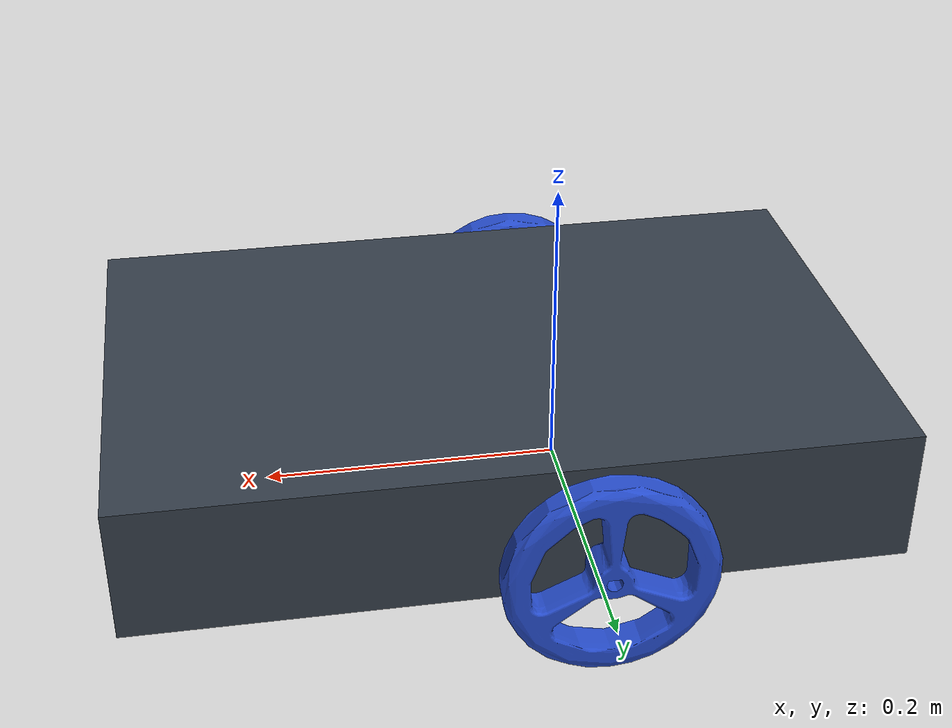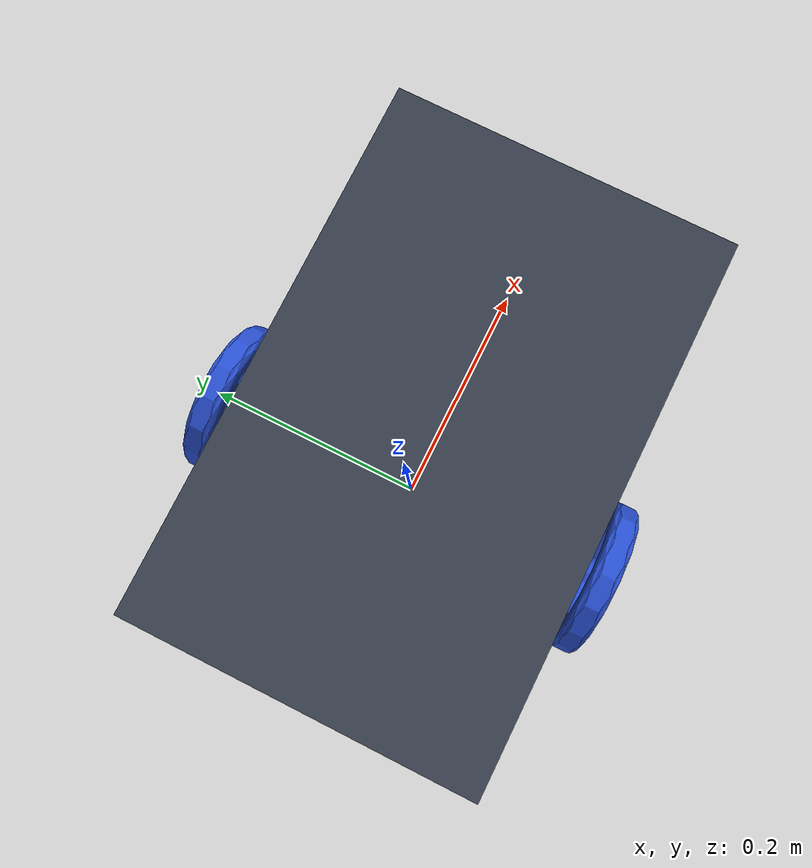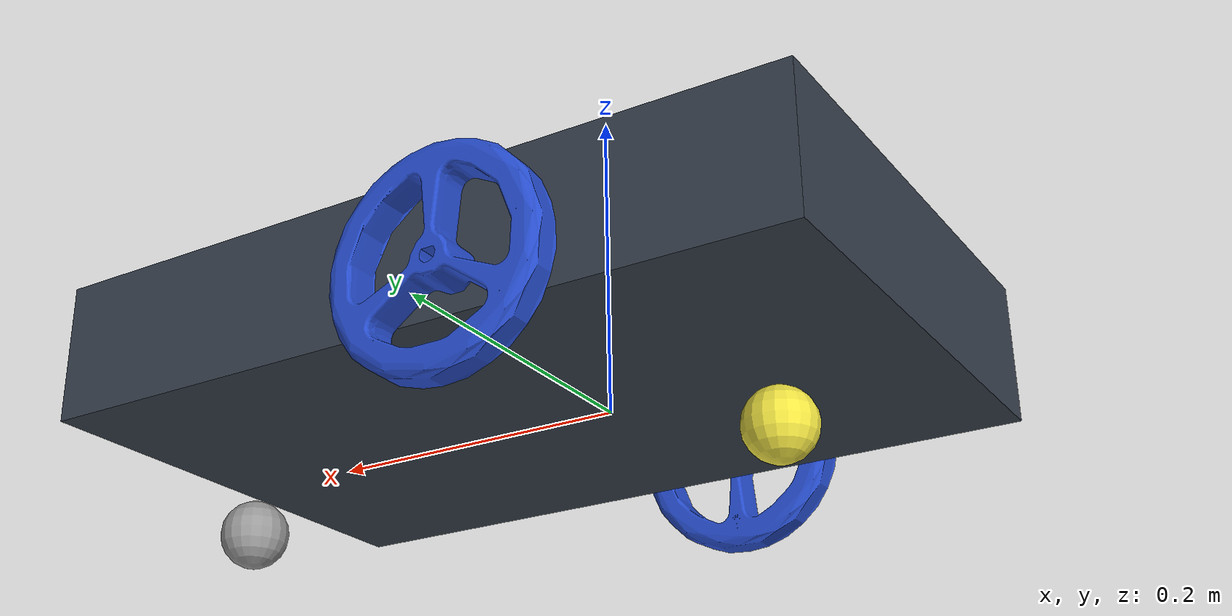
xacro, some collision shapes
<?xml version="1.0" ?>
<robot name="mouse" xmlns:xacro="http://www.ros.org/wiki/xacro">
  <material name="black">
    <color rgba="0.0 0.0 0.0 1.0"/>
  </material>
  <material name="blue">
    <color rgba="0.203125 0.23828125 0.28515625 1.0"/>
  </material>
  <material name="green">
    <color rgba="0.0 0.8 0.0 1.0"/>
  </material>
  <material name="grey">
    <color rgba="0.2 0.2 0.2 1.0"/>
  </material>
  <material name="orange">
    <color rgba="1.0 0.423529411765 0.0392156862745 1.0"/>
  </material>
  <material name="brown">
    <color rgba="0.870588235294 0.811764705882 0.764705882353 1.0"/>
  </material>
  <material name="red">
    <color rgba="0.80078125 0.12890625 0.1328125 1.0"/>
  </material>
  <material name="white">
    <color rgba="1.0 1.0 1.0 1.0"/>
  </material>

  <gazebo reference="link_chassis">
    <material>Gazebo/Orange</material>
  </gazebo>
  <gazebo reference="link_caster">
    <material>Gazebo/Gray</material>
  </gazebo>
  <gazebo reference="link_left_wheel">
    <material>Gazebo/Blue</material>
  </gazebo>
  <gazebo reference="link_right_wheel">
    <material>Gazebo/Blue</material>
  </gazebo>

  <!-- ============ ROBOT DESCRIPTION ============ -->
  <!-- Chassis -->
  <link name="link_chassis">
    <collision name="collision_chassis">
    <origin rpy="0 0 0" xyz="0.05 0 0.05"/>
      <geometry>
        <box size="0.5 0.32 0.09"/>
      </geometry>
    </collision>
    <visual>
      <origin rpy="0 0 0" xyz="0 0 0"/>
      <geometry>
        <mesh filename="package://micromouse/meshes/collision/umouse2_align.stl" scale="3.5 3.5 3.5"/>
      </geometry>
      <material name="blue"/>
    </visual>
  </link>

  <joint name="fixed_base_joint" type="fixed">
    <origin rpy="0 0 0" xyz="0 0 0"/>
    <child link="chassis_inertia"/>
    <parent link="link_chassis"/>
  </joint>

  <link name="chassis_inertia">
    <inertial>
      <mass value="5"/>
      <origin rpy="0 0 0" xyz="0.05 0 0.05"/>
      <inertia ixx="0.0460416" ixy="0" ixz="0" iyy="0.10754166" iyz="0" izz="0.1468333"/>
    </inertial>
  </link>

  <!-- Front castor wheel -->
  <joint name="fixed_caster_joint" type="continuous">
    <origin rpy="0 0 0" xyz="0.28 0 -0.015"/>
    <child link="link_caster"/>
    <parent link="link_chassis"/>
  </joint>

  <link name="link_caster">
    <collision name="caster_front_collision">
      <origin rpy="0 0 0" xyz="0 0 -0.015"/>
      <geometry>
        <sphere radius="0.023"/>
      </geometry>
      <surface>
        <friction>
          <ode>
            <mu>0</mu>
            <mu2>0</mu2>
            <slip1>1.0</slip1>
            <slip2>1.0</slip2>
          </ode>
        </friction>
      </surface>
    </collision>
    <inertial>
      <origin rpy="0 0 0" xyz="0 0 -0.015"/>
      <mass value="0.1" />
      <inertia ixx="0.000014516" ixy="0.0" ixz="0.0" iyy="0.000014516" iyz="0.0" izz="0.000014516"/>
    </inertial>
    <visual name="caster_front_visual">
      <origin rpy="0 0 0" xyz="0 0 -0.015"/>
      <geometry>
        <sphere radius="0.023"/>
      </geometry>
    </visual>
  </link>

  <!-- Back castor wheel -->
  <joint name="fixed_bcaster_joint" type="continuous">
    <origin rpy="0 0 0" xyz="-0.11 0 -0.015"/>
    <child link="link_bcaster"/>
    <parent link="link_chassis"/>
  </joint>

  <link name="link_bcaster">
    <collision name="caster_back_collision">
      <origin rpy="0 0 0" xyz="0 0 -0.015"/>
      <geometry>
        <sphere radius="0.023"/>
      </geometry>
      <surface>
        <friction>
          <ode>
            <mu>0</mu>
            <mu2>0</mu2>
            <slip1>1.0</slip1>
            <slip2>1.0</slip2>
          </ode>
        </friction>
      </surface>
    </collision>
    <inertial>
      <origin rpy="0 0 0" xyz="0 0 -0.015"/>
      <mass value="0.1" />
      <inertia ixx="0.000014516" ixy="0.0" ixz="0.0" iyy="0.000014516" iyz="0.0" izz="0.000014516"/>
    </inertial>
    <visual name="caster_back_visual">
      <origin rpy="0 0 0" xyz="0 0 -0.015"/>
      <geometry>
        <sphere radius="0.023"/>
      </geometry>
    </visual>
  </link>

<!-- Left wheel -->
  <link name="link_left_wheel">
    <inertial>
      <mass value="0.2"/>
      <origin rpy="0 1.5707 -1.5707" xyz="0 0 0"/>
      <inertia ixx="0.000252" ixy="0" ixz="0" iyy="0.000252" iyz="0" izz="0.000486"/>
    </inertial>
    <collision name="link_left_wheel_collision">
      <origin rpy="0 1.570796 1.570796" xyz="0 0 0"/>
      <geometry>
        <cylinder length="0.022" radius="0.066"/>
      </geometry>
    </collision>
    <visual name="link_left_wheel_visual">
      <origin rpy="0 0 0" xyz="0 0 0"/>
      <geometry>
        <mesh filename="package://micromouse/meshes/collision/wheel_r2.stl" scale="3.5 3.5 3.5"/>
      </geometry>
    </visual>
  </link>

  <joint name="joint_left_wheel" type="continuous">
    <origin rpy="0 0 0" xyz="0 0.178 0.028"/>
    <child link="link_left_wheel"/>
    <parent link="link_chassis"/>
    <axis rpy="0 0 0" xyz="0 1 0"/>
    <limit effort="10000" velocity="1000"/>
    <joint_properties damping="1.0" friction="1.0"/>
  </joint>

<!-- Right wheel -->
  <link name="link_right_wheel">
    <inertial>
      <mass value="0.2"/>
      <origin rpy="0 1.5707 -1.5707" xyz="0 0 0"/>
      <inertia ixx="0.000252" ixy="0" ixz="0" iyy="0.000252" iyz="0" izz="0.000486"/>
    </inertial>
    <collision name="link_right_wheel_collision">
      <origin rpy="0 1.570796 1.570796" xyz="0 0 0"/>
      <geometry>
        <cylinder length="0.022" radius="0.066"/>
      </geometry>
    </collision>
    <visual name="link_right_wheel_visual">
      <origin rpy="0 0 0" xyz="0 0 0"/>
      <geometry>
        <mesh filename="package://micromouse/meshes/collision/wheel_l2.stl" scale="3.5 3.5 3.5"/>
      </geometry>
    </visual>
  </link>

  <joint name="joint_right_wheel" type="continuous">
    <origin rpy="0 0 0" xyz="0 -0.178 0.028"/>
    <child link="link_right_wheel"/>
    <parent link="link_chassis"/>
    <axis rpy="0 0 0" xyz="0 1 0"/>
    <limit effort="10000" velocity="1000"/>
    <joint_properties damping="1.0" friction="1.0"/>
  </joint>

<!-- IMU Sensor -->
  <link name="imu_link"/>

  <joint name="imu_joint" type="fixed">
    <parent link="link_chassis"/>
    <child link="imu_link"/>
    <origin xyz="0 0 0" rpy="0 0 0"/>
  </joint>

  <gazebo reference="imu_link">
    <sensor type="imu" name="imu">
      <always_on>true</always_on>
      <visualize>true</visualize>
    </sensor>
    <material>Gazebo/Grey</material>
  </gazebo>

  <gazebo>
    <plugin name="imu_plugin" filename="libgazebo_ros_imu.so">
      <alwaysOn>true</alwaysOn>
      <bodyName>imu_link</bodyName>
      <frameName>imu_link</frameName>
      <topicName>imu</topicName>
      <serviceName>imu_service</serviceName>
      <gaussianNoise>0.0</gaussianNoise>
      <updateRate>200</updateRate>
      <imu>
        <noise>
          <type>gaussian</type>
          <rate>
            <mean>0.0</mean>
            <stddev>2e-4</stddev>
            <bias_mean>0.0000075</bias_mean>
            <bias_stddev>0.0000008</bias_stddev>
          </rate>
          <accel>
            <mean>0.0</mean>
            <stddev>1.7e-2</stddev>
            <bias_mean>0.1</bias_mean>
            <bias_stddev>0.001</bias_stddev>
          </accel>
        </noise>
      </imu>
    </plugin>
  </gazebo>

  <!-- LiDAR Sensor -->
  <joint name="scan_joint" type="fixed">
    <parent link="link_chassis"/>
    <child link="link_scan"/>
    <origin xyz="0.185 0 0.155" rpy="0 0 -1.57079"/>
  </joint>

  <link name="link_scan">
    <visual>
      <origin xyz="0 0 0" rpy="0 0 0"/>
      <geometry>
        <box size="0.00001 0.00001 0.00001"/>
      </geometry>
      <material name="black"/>
    </visual>
    <collision>
      <origin xyz="0 0 0" rpy="0 0 0"/>
      <geometry>
        <box size="0.00001 0.00001 0.00001"/>
      </geometry>
    </collision>
  </link>

  <gazebo reference="link_scan">
    <sensor type="ray" name="lidar_sensor">
      <pose>0 0 0 0 0 0</pose>
      <visualize>true</visualize>
      <update_rate>5</update_rate>
      <ray>
        <scan>
          <horizontal>
            <samples>360</samples>
            <resolution>1</resolution>
            <min_angle>0.0</min_angle>
            <max_angle>3.14159</max_angle>
          </horizontal>
        </scan>
        <range>
          <min>0.12</min>
          <max>4.8</max>
          <resolution>0.015</resolution>
        </range>
        <noise>
          <type>gaussian</type>
          <mean>0.0</mean>
          <stddev>0.01</stddev>
        </noise>
      </ray>
      <plugin name="gazebo_ros_lidar_controller" filename="libgazebo_ros_laser.so">
        <topicName>scan</topicName>
        <frameName>link_scan</frameName>
      </plugin>
    </sensor>
    <material>Gazebo/FlatBlack</material>
  </gazebo>

  <!-- Controller -->
  <gazebo>
    <plugin name="mouse_controller" filename="libgazebo_ros_diff_drive.so">
      <commandTopic>cmd_vel</commandTopic>
      <odometryTopic>odom</odometryTopic>
      <odometryFrame>odom</odometryFrame>
      <odometrySource>world</odometrySource>
      <publishOdomTF>true</publishOdomTF>
      <robotBaseFrame>link_chassis</robotBaseFrame>
      <publishWheelTF>false</publishWheelTF>
      <publishTf>true</publishTf>
      <publishWheelJointState>true</publishWheelJointState>
      <legacyMode>false</legacyMode>
      <updateRate>30</updateRate>
      <leftJoint>joint_left_wheel</leftJoint>
      <rightJoint>joint_right_wheel</rightJoint>
      <wheelSeparation>0.03</wheelSeparation>
      <wheelDiameter>0.02</wheelDiameter>
      <wheelAcceleration>1</wheelAcceleration>
      <wheelTorque>10</wheelTorque>
      <rosDebugLevel>na</rosDebugLevel>
    </plugin>
  </gazebo>
</robot>
